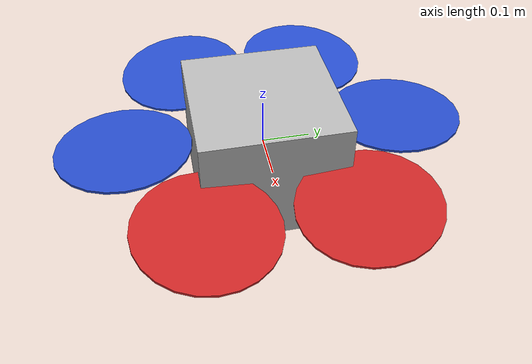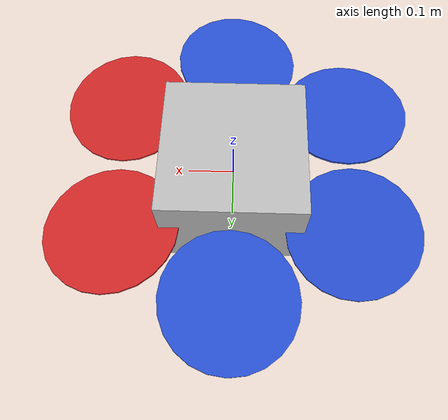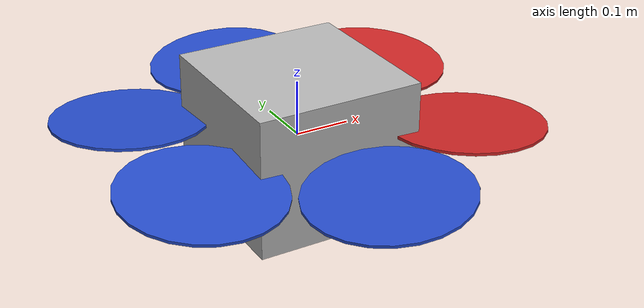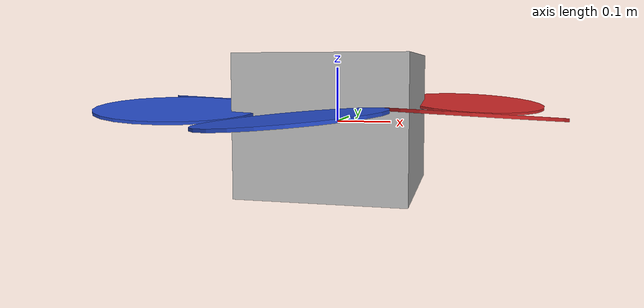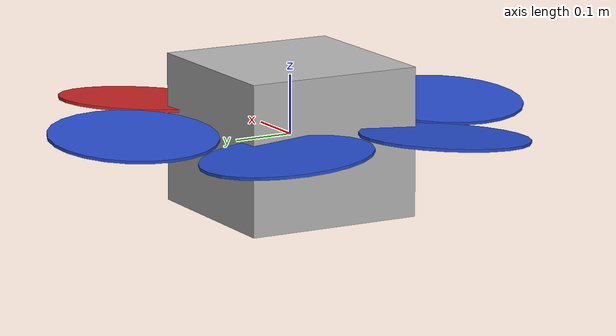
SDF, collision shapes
<?xml version="1.0"?>
<sdf version="1.6">
    <model name="X4_GPS_RGBD">
        <link name="base_link">
            <pose frame="">0 0 0 0 -0 0</pose>
            <inertial>
                <pose frame="">0 0 0 0 -0 0</pose>
                <mass>3.42</mass>
                <inertia>
                    <ixx>0.075</ixx>
                    <ixy>0</ixy>
                    <ixz>0</ixz>
                    <iyy>0.075</iyy>
                    <iyz>0</iyz>
                    <izz>0.148916</izz>
                </inertia>
            </inertial>
            <collision name="base_link_inertia_collision">
                <pose frame="">0 0 0 0 -0 0</pose>
                <geometry>
                    <box>
                        <size>0.3 0.3 0.25</size>
                    </box>
                </geometry>
            </collision>
            <visual name="base_link_inertia_visual">
                <pose frame="">0 0 0 0 -0 0</pose>
                <geometry>
                    <mesh>
                        <scale>1 1 1</scale>
                        <uri>file://REPLACE_RESOURCE_PATH/robots/X4_GPS_RGBD/meshes/x4.dae</uri>
                    </mesh>
                </geometry>
            </visual>
            <visual name="marker_visual_1">
                <pose frame="">-0.1 0 0.077 0 -0.1 0</pose>
                <geometry>
                    <mesh>
                        <scale>1 1 1</scale>
                        <uri>file://REPLACE_RESOURCE_PATH/robots/X4_GPS_RGBD/meshes/led.dae</uri>
                    </mesh>
                </geometry>
            </visual>
            <visual name="marker_visual_2">
                <pose frame="">-0.09 0.059 0.059 -0.785397 -0 0.2</pose>
                <geometry>
                    <mesh>
                        <scale>1 1 1</scale>
                        <uri>file://REPLACE_RESOURCE_PATH/robots/X4_GPS_RGBD/meshes/led.dae</uri>
                    </mesh>
                </geometry>
            </visual>
            <visual name="marker_visual_3">
                <pose frame="">-0.09 -0.059 0.059 0.785397 -0 -0.2</pose>
                <geometry>
                    <mesh>
                        <scale>1 1 1</scale>
                        <uri>file://REPLACE_RESOURCE_PATH/robots/X4_GPS_RGBD/meshes/led.dae</uri>
                    </mesh>
                </geometry>
            </visual>
            <visual name="downward_flashlight_visual">
                <pose frame="">-0.043704 0 0.102914 -0.2 0.000158 -1.57002</pose>
                <geometry>
                    <mesh>
                        <scale>0.01 0.01 0.01</scale>
                        <uri>file://REPLACE_RESOURCE_PATH/robots/X4_GPS_RGBD/meshes/spotlight.dae</uri>
                    </mesh>
                </geometry>
            </visual>
            <visual name="left_flashlight_visual">
                <pose frame="">-0.071985 0.090826 0.066102 0.06 -4.8e-05 -1.27</pose>
                <geometry>
                    <mesh>
                        <scale>0.01 0.01 0.01</scale>
                        <uri>file://REPLACE_RESOURCE_PATH/robots/X4_GPS_RGBD/meshes/spotlight.dae</uri>
                    </mesh>
                </geometry>
            </visual>
            <visual name="right_flashlight_visual">
                <pose frame="">-0.071985 -0.090826 0.066102 0.06 -4.8e-05 -1.87</pose>
                <geometry>
                    <mesh>
                        <scale>0.01 0.01 0.01</scale>
                        <uri>file://REPLACE_RESOURCE_PATH/robots/X4_GPS_RGBD/meshes/spotlight.dae</uri>
                    </mesh>
                </geometry>
            </visual>

            <sensor name="imu_sensor" type="imu">
                <always_on>1</always_on>
                <update_rate>250</update_rate>
                <imu>
                    <enable_orientation>0</enable_orientation>
                    <angular_velocity>
                        <x>
                            <noise type="gaussian">
                                <mean>0</mean>
                                <stddev>0.009</stddev>
                                <bias_mean>0.00075</bias_mean>
                                <bias_stddev>0.005</bias_stddev>
                                <dynamic_bias_stddev>0.00002</dynamic_bias_stddev>
                                <dynamic_bias_correlation_time>400.0</dynamic_bias_correlation_time>
                                <precision>0.00025</precision>
                            </noise>
                        </x>
                        <y>
                            <noise type="gaussian">
                                <mean>0</mean>
                                <stddev>0.009</stddev>
                                <bias_mean>0.00075</bias_mean>
                                <bias_stddev>0.005</bias_stddev>
                                <dynamic_bias_stddev>0.00002</dynamic_bias_stddev>
                                <dynamic_bias_correlation_time>400.0</dynamic_bias_correlation_time>
                                <precision>0.00025</precision>
                            </noise>
                        </y>
                        <z>
                            <noise type="gaussian">
                                <mean>0</mean>
                                <stddev>0.009</stddev>
                                <bias_mean>0.00075</bias_mean>
                                <bias_stddev>0.005</bias_stddev>
                                <dynamic_bias_stddev>0.00002</dynamic_bias_stddev>
                                <dynamic_bias_correlation_time>400.0</dynamic_bias_correlation_time>
                                <precision>0.00025</precision>
                            </noise>
                        </z>
                    </angular_velocity>
                    <linear_acceleration>
                        <x>
                            <noise type="gaussian">
                                <mean>0</mean>
                                <stddev>0.021</stddev>
                                <bias_mean>0.05</bias_mean>
                                <bias_stddev>0.0075</bias_stddev>
                                <dynamic_bias_stddev>0.000375</dynamic_bias_stddev>
                                <dynamic_bias_correlation_time>175.0</dynamic_bias_correlation_time>
                                <precision>0.005</precision>
                            </noise>
                        </x>
                        <y>
                            <noise type="gaussian">
                                <mean>0</mean>
                                <stddev>0.021</stddev>
                                <bias_mean>0.05</bias_mean>
                                <bias_stddev>0.0075</bias_stddev>
                                <dynamic_bias_stddev>0.000375</dynamic_bias_stddev>
                                <dynamic_bias_correlation_time>175.0</dynamic_bias_correlation_time>
                                <precision>0.005</precision>
                            </noise>
                        </y>
                        <z>
                            <noise type="gaussian">
                                <mean>0</mean>
                                <stddev>0.021</stddev>
                                <bias_mean>0.05</bias_mean>
                                <bias_stddev>0.0075</bias_stddev>
                                <dynamic_bias_stddev>0.000375</dynamic_bias_stddev>
                                <dynamic_bias_correlation_time>175.0</dynamic_bias_correlation_time>
                                <precision>0.005</precision>
                            </noise>
                        </z>
                    </linear_acceleration>
                </imu>

            </sensor>

            <sensor name="gps" type="navsat">
                <always_on>1</always_on>
                <update_rate>1</update_rate>
            </sensor>
            <sensor name="magnetometer" type="magnetometer">
                <always_on>1</always_on>
                <update_rate>20</update_rate>
                <magnetometer>
                    <x>
                        <noise type="gaussian">
                            <mean>0.000000080</mean>
                            <bias_mean>0.000000400</bias_mean>
                        </noise>
                    </x>
                    <y>
                        <noise type="gaussian">
                            <mean>0.000000080</mean>
                            <bias_mean>0.000000400</bias_mean>
                        </noise>
                    </y>
                    <z>
                        <noise type="gaussian">
                            <mean>0.000000080</mean>
                            <bias_mean>0.000000400</bias_mean>
                        </noise>
                    </z>
                </magnetometer>
            </sensor>
            <visual name="camera_mount_base_visual">
                <pose>0.05 0 -0.030 0 0.0 0</pose>
                <geometry>
                    <box>
                        <size>0.06 0.06 0.006</size>
                    </box>
                </geometry>
            </visual>
            <visual name="camera_mount_arm_visual">
                <pose>0.08 0 -0.040 0 0.0 0</pose>
                <geometry>
                    <cylinder>
                        <radius>0.005</radius>
                        <length>0.08</length>
                    </cylinder>
                </geometry>
            </visual>
            <visual name="camera_mount_arm2_visual">
                <pose>0.08 0 -0.08 0 1.57 0</pose>
                <geometry>
                    <cylinder>
                        <radius>0.01</radius>
                        <length>0.025</length>
                    </cylinder>
                </geometry>
            </visual>
            <visual name="camera_visual">
                <pose>0.1 0 -0.08 0 0 0</pose>
                <geometry>
                    <box>
                        <size>0.02 0.025 0.025</size>
                    </box>
                </geometry>
            </visual>
            <sensor name="camera_front" type="rgbd_camera">
                <pose>0.2 0 -0.08 0 0 0</pose>
                <always_on>1</always_on>
                <update_rate>20</update_rate>
                <camera name="camera_front">
                    <horizontal_fov>1.0472
                    </horizontal_fov>
                    <lens>
                        <intrinsics>
                            <!-- fx = fy = width / ( 2 * tan (hfov / 2 ) ) -->
                            <fx>277.1</fx>
                            <fy>277.1</fy>
                            <!-- cx = ( width + 1 ) / 2 -->
                            <cx>160.5</cx>
                            <!-- cy = ( height + 1 ) / 2 -->
                            <cy>120.5</cy>
                            <s>0</s>
                        </intrinsics>
                    </lens>
                    <distortion>
                        <k1>0.0</k1>
                        <k2>0.0</k2>
                        <k3>0.0</k3>
                        <p1>0.0</p1>
                        <p2>0.0</p2>
                        <center>0.5 0.5</center>
                    </distortion>
                    <image>
                        <width>320</width>
                        <height>240</height>
                        <format>R8G8B8</format>
                    </image>
                    <clip>
                        <near>0.01</near>
                        <far>300</far>
                    </clip>
                    <depth_camera>
                        <clip>
                            <near>0.1</near>
                            <far>10</far>
                        </clip>
                    </depth_camera>
                    <noise>
                        <type>gaussian</type>
                        <mean>0</mean>
                        <stddev>0.007</stddev>
                    </noise>
                </camera>
            </sensor>
        </link>
        <link name="rotor_0">
            <pose frame="">0.247 0.1506 0.028 0.087267 0 0.523599</pose>
            <inertial>
                <pose frame="">0 0 0 0 -0 0</pose>
                <mass>0.005</mass>
                <inertia>
                    <ixx>9.75e-07</ixx>
                    <ixy>0</ixy>
                    <ixz>0</ixz>
                    <iyy>8.13545e-05</iyy>
                    <iyz>0</iyz>
                    <izz>8.22545e-05</izz>
                </inertia>
            </inertial>
            <collision name="rotor_0_collision">
                <pose frame="">0 0 0 0 -0 0</pose>
                <geometry>
                    <cylinder>
                        <length>0.005</length>
                        <radius>0.1397</radius>
                    </cylinder>
                </geometry>
                <surface>
                    <contact>
                        <ode/>
                    </contact>
                    <friction>
                        <ode/>
                    </friction>
                </surface>
            </collision>
            <visual name="rotor_0_visual">
                <pose frame="">0 0 0 0 -0 0</pose>
                <geometry>
                    <mesh>
                        <scale>1 1 1</scale>
                        <uri>file://REPLACE_RESOURCE_PATH/robots/X4_GPS_RGBD/meshes/neo11_propeller_ccw.dae</uri>
                    </mesh>
                </geometry>
                <material>
                    <diffuse>1 0 0 1</diffuse>
                    <script>
                        <name>Gazebo/Red</name>
                        <uri>file:///media/materials/scripts/gazebo.material</uri>
                    </script>
                </material>
                <cast_shadows>0</cast_shadows>
            </visual>
            <gravity>1</gravity>
            <velocity_decay/>
        </link>
        <joint name="rotor_0_joint" type="revolute">
            <child>rotor_0</child>
            <parent>base_link</parent>
            <axis>
                <xyz>0.043578 -0.075479 0.996195</xyz>
                <limit>
                    <lower>-1e+16</lower>
                    <upper>1e+16</upper>
                </limit>
                <dynamics>
                    <spring_reference>0</spring_reference>
                    <spring_stiffness>0</spring_stiffness>
                </dynamics>
                <use_parent_model_frame>1</use_parent_model_frame>
            </axis>
        </joint>
        <link name="rotor_1">
            <pose frame="">-0.00067 0.28929 0.028 0 -0.087267 0</pose>
            <inertial>
                <pose frame="">0 0 0 0 -0 0</pose>
                <mass>0.005</mass>
                <inertia>
                    <ixx>9.75e-07</ixx>
                    <ixy>0</ixy>
                    <ixz>0</ixz>
                    <iyy>8.13545e-05</iyy>
                    <iyz>0</iyz>
                    <izz>8.22545e-05</izz>
                </inertia>
            </inertial>
            <collision name="rotor_1_collision">
                <pose frame="">0 0 0 0 -0 0</pose>
                <geometry>
                    <cylinder>
                        <length>0.005</length>
                        <radius>0.1397</radius>
                    </cylinder>
                </geometry>
                <surface>
                    <contact>
                        <ode/>
                    </contact>
                    <friction>
                        <ode/>
                    </friction>
                </surface>
            </collision>
            <visual name="rotor_1_visual">
                <pose frame="">0 0 0 0 -0 0</pose>
                <geometry>
                    <mesh>
                        <scale>1 1 1</scale>
                        <uri>file://REPLACE_RESOURCE_PATH/robots/X4_GPS_RGBD/meshes/neo11_propeller_cw.dae</uri>
                    </mesh>
                </geometry>
                <material>
                    <diffuse>0 0 1 1</diffuse>
                    <script>
                        <name>Gazebo/Blue</name>
                        <uri>file://media/materials/scripts/gazebo.material</uri>
                    </script>
                </material>
                <cast_shadows>0</cast_shadows>
            </visual>
            <gravity>1</gravity>
            <velocity_decay/>
        </link>
        <joint name="rotor_1_joint" type="revolute">
            <child>rotor_1</child>
            <parent>base_link</parent>
            <axis>
                <xyz>-0.087156 0 0.996195</xyz>
                <limit>
                    <lower>-1e+16</lower>
                    <upper>1e+16</upper>
                </limit>
                <dynamics>
                    <spring_reference>0</spring_reference>
                    <spring_stiffness>0</spring_stiffness>
                </dynamics>
                <use_parent_model_frame>1</use_parent_model_frame>
            </axis>
        </joint>
        <link name="rotor_2">
            <pose frame="">-0.2501 0.1454 0.028 0.087267 -0 2.61799</pose>
            <inertial>
                <pose frame="">0 0 0 0 -0 0</pose>
                <mass>0.005</mass>
                <inertia>
                    <ixx>9.75e-07</ixx>
                    <ixy>0</ixy>
                    <ixz>0</ixz>
                    <iyy>8.13545e-05</iyy>
                    <iyz>0</iyz>
                    <izz>8.22545e-05</izz>
                </inertia>
            </inertial>
            <collision name="rotor_2_collision">
                <pose frame="">0 0 0 0 -0 0</pose>
                <geometry>
                    <cylinder>
                        <length>0.005</length>
                        <radius>0.1397</radius>
                    </cylinder>
                </geometry>
                <surface>
                    <contact>
                        <ode/>
                    </contact>
                    <friction>
                        <ode/>
                    </friction>
                </surface>
            </collision>
            <visual name="rotor_2_visual">
                <pose frame="">0 0 0 0 -0 0</pose>
                <geometry>
                    <mesh>
                        <scale>1 1 1</scale>
                        <uri>file://REPLACE_RESOURCE_PATH/robots/X4_GPS_RGBD/meshes/neo11_propeller_ccw.dae</uri>
                    </mesh>
                </geometry>
                <material>
                    <diffuse>0 0 1 1</diffuse>
                    <script>
                        <name>Gazebo/Blue</name>
                        <uri>file://media/materials/scripts/gazebo.material</uri>
                    </script>
                </material>
                <cast_shadows>0</cast_shadows>
            </visual>
            <gravity>1
            </gravity>
            <velocity_decay/>
        </link>
        <joint name="rotor_2_joint" type="revolute">
            <child>rotor_2</child>
            <parent>base_link</parent>
            <axis>
                <xyz>0.043578 0.075479 0.996195</xyz>
                <limit>
                    <lower>-1e+16</lower>
                    <upper>1e+16</upper>
                </limit>
                <dynamics>
                    <spring_reference>0</spring_reference>
                    <spring_stiffness>0</spring_stiffness>
                </dynamics>
                <use_parent_model_frame>1</use_parent_model_frame>
            </axis>
        </joint>
        <link name="rotor_3">
            <pose frame="">-0.2501 -0.1454 0.028 -0.087267 -0 -2.61799</pose>
            <inertial>
                <pose frame="">0 0 0 0 -0 0</pose>
                <mass>0.005</mass>
                <inertia>
                    <ixx>9.75e-07</ixx>
                    <ixy>0</ixy>
                    <ixz>0</ixz>
                    <iyy>8.13545e-05</iyy>
                    <iyz>0</iyz>
                    <izz>8.22545e-05</izz>
                </inertia>
            </inertial>
            <collision name="rotor_3_collision">
                <pose frame="">0 0 0 0 -0 0</pose>
                <geometry>
                    <cylinder>
                        <length>0.005</length>
                        <radius>0.1397</radius>
                    </cylinder>
                </geometry>
                <surface>
                    <contact>
                        <ode/>
                    </contact>
                    <friction>
                        <ode/>
                    </friction>
                </surface>
            </collision>
            <visual name="rotor_3_visual">
                <pose frame="">0 0 0 0 -0 0</pose>
                <geometry>
                    <mesh>
                        <scale>1 1 1</scale>
                        <uri>file://REPLACE_RESOURCE_PATH/robots/X4_GPS_RGBD/meshes/neo11_propeller_cw.dae</uri>
                    </mesh>
                </geometry>
                <material>
                    <diffuse>0 0 1 1</diffuse>
                    <script>
                        <name>Gazebo/Blue</name>
                        <uri>file://media/materials/scripts/gazebo.material</uri>
                    </script>
                </material>
                <cast_shadows>0</cast_shadows>
            </visual>
            <gravity>1
            </gravity>
            <velocity_decay/>
        </link>
        <joint name="rotor_3_joint" type="revolute">
            <child>rotor_3</child>
            <parent>base_link</parent>
            <axis>
                <xyz>0.043578 -0.075479 0.996195</xyz>
                <limit>
                    <lower>-1e+16</lower>
                    <upper>1e+16</upper>
                </limit>
                <dynamics>
                    <spring_reference>0</spring_reference>
                    <spring_stiffness>0</spring_stiffness>
                </dynamics>
                <use_parent_model_frame>1</use_parent_model_frame>
            </axis>
        </joint>
        <link name="rotor_4">
            <pose frame="">-0.00067 -0.28929 0.028 -0 0.087267 -3.14159</pose>
            <inertial>
                <pose frame="">0 0 0 0 -0 0</pose>
                <mass>0.005</mass>
                <inertia>
                    <ixx>9.75e-07</ixx>
                    <ixy>0</ixy>
                    <ixz>0</ixz>
                    <iyy>8.13545e-05</iyy>
                    <iyz>0</iyz>
                    <izz>8.22545e-05</izz>
                </inertia>
            </inertial>
            <collision name="rotor_4_collision">
                <pose frame="">0 0 0 0 -0 0</pose>
                <geometry>
                    <cylinder>
                        <length>0.005</length>
                        <radius>0.1397</radius>
                    </cylinder>
                </geometry>
                <surface>
                    <contact>
                        <ode/>
                    </contact>
                    <friction>
                        <ode/>
                    </friction>
                </surface>
            </collision>
            <visual name="rotor_4_visual">
                <pose frame="">0 0 0 0 -0 0</pose>
                <geometry>
                    <mesh>
                        <scale>1 1 1</scale>
                        <uri>file://REPLACE_RESOURCE_PATH/robots/X4_GPS_RGBD/meshes/neo11_propeller_ccw.dae</uri>
                    </mesh>
                </geometry>
                <material>
                    <diffuse>0 0 1 1</diffuse>
                    <script>
                        <name>Gazebo/Blue</name>
                        <uri>file://media/materials/scripts/gazebo.material</uri>
                    </script>
                </material>
                <cast_shadows>0</cast_shadows>
            </visual>
            <gravity>1
            </gravity>
            <velocity_decay/>
        </link>
        <joint name="rotor_4_joint" type="revolute">
            <child>rotor_4</child>
            <parent>base_link</parent>
            <axis>
                <xyz>-0.087156 -0 0.996195</xyz>
                <limit>
                    <lower>-1e+16</lower>
                    <upper>1e+16</upper>
                </limit>
                <dynamics>
                    <spring_reference>0</spring_reference>
                    <spring_stiffness>0</spring_stiffness>
                </dynamics>
                <use_parent_model_frame>1</use_parent_model_frame>
            </axis>
        </joint>
        <link name="rotor_5">
            <pose frame="">0.247 -0.1506 0.028 -0.087267 0 -0.523599</pose>
            <inertial>
                <pose frame="">0 0 0 0 -0 0</pose>
                <mass>0.005</mass>
                <inertia>
                    <ixx>9.75e-07</ixx>
                    <ixy>0</ixy>
                    <ixz>0</ixz>
                    <iyy>8.13545e-05</iyy>
                    <iyz>0</iyz>
                    <izz>8.22545e-05</izz>
                </inertia>
            </inertial>
            <collision name="rotor_5_collision">
                <pose frame="">0 0 0 0 -0 0</pose>
                <geometry>
                    <cylinder>
                        <length>0.005</length>
                        <radius>0.1397</radius>
                    </cylinder>
                </geometry>
                <surface>
                    <contact>
                        <ode/>
                    </contact>
                    <friction>
                        <ode/>
                    </friction>
                </surface>
            </collision>
            <visual name="rotor_5_visual">
                <pose frame="">0 0 0 0 -0 0
                </pose>
                <geometry>
                    <mesh>
                        <scale>1 1 1</scale>
                        <uri>file://REPLACE_RESOURCE_PATH/robots/X4_GPS_RGBD/meshes/neo11_propeller_cw.dae</uri>
                    </mesh>
                </geometry>
                <material>
                    <diffuse>1 0 0 1</diffuse>
                    <script>
                        <name>Gazebo/Red</name>
                        <uri>file://media/materials/scripts/gazebo.material</uri>
                    </script>
                </material>
                <cast_shadows>0</cast_shadows>
            </visual>
            <gravity>1</gravity>
            <velocity_decay/>
        </link>
        <joint name="rotor_5_joint" type="revolute">
            <child>rotor_5</child>
            <parent>base_link</parent>
            <axis>
                <xyz>0.043578 0.075479 0.996195</xyz>
                <limit>
                    <lower>-1e+16</lower>
                    <upper>1e+16</upper>
                </limit>
                <dynamics>
                    <spring_reference>0</spring_reference>
                    <spring_stiffness>0</spring_stiffness>
                </dynamics>
                <use_parent_model_frame>1</use_parent_model_frame>
            </axis>
        </joint>

        <link name="base_link/camera_front">
            <pose frame="">0.2 0 -0.05 0 0 0</pose>
            <inertial>
                <pose frame="">0 0 0 0 0 0</pose>
                <mass>0.005</mass>
                <inertia>
                    <ixx>9.75e-07</ixx>
                    <ixy>0</ixy>
                    <ixz>0</ixz>
                    <iyy>8.13545e-05</iyy>
                    <iyz>0</iyz>
                    <izz>8.22545e-05</izz>
                </inertia>
            </inertial>
        </link>

        <joint name="camera_front_JOINT" type="fixed">
            <child>base_link/camera_front</child>
            <parent>base_link</parent>
        </joint>

        <!-- now some plugins -->
        <plugin filename="ignition-gazebo-multicopter-motor-model-system" name="ignition::gazebo::systems::MulticopterMotorModel">
            <robotNamespace>model/REPLACE_THIS_NAMESPACE</robotNamespace>
            <jointName>rotor_0_joint</jointName>
            <linkName>rotor_0</linkName>
            <turningDirection>ccw</turningDirection>
            <timeConstantUp>0.0182</timeConstantUp>
            <timeConstantDown>0.0182</timeConstantDown>
            <maxRotVelocity>1000.0</maxRotVelocity>
            <motorConstant>1.269e-05</motorConstant>
            <momentConstant>0.016754</momentConstant>
            <commandSubTopic>command/motor_speed</commandSubTopic>
            <motorNumber>0</motorNumber>
            <rotorDragCoefficient>2.0673e-04</rotorDragCoefficient>
            <rotorDragCoefficient>0</rotorDragCoefficient>
            <rollingMomentCoefficient>0</rollingMomentCoefficient>
            <motorSpeedPubTopic>motor_speed/0</motorSpeedPubTopic>
            <rotorVelocitySlowdownSim>2</rotorVelocitySlowdownSim>
            <motorType>velocity</motorType>
        </plugin>

        <plugin filename="ignition-gazebo-multicopter-motor-model-system"  name="ignition::gazebo::systems::MulticopterMotorModel">
            <robotNamespace>model/REPLACE_THIS_NAMESPACE</robotNamespace>
            <jointName>rotor_1_joint</jointName>
            <linkName>rotor_1</linkName>
            <turningDirection>cw</turningDirection>
            <timeConstantUp>0.0182</timeConstantUp>
            <timeConstantDown>0.0182</timeConstantDown>
            <maxRotVelocity>1000.0</maxRotVelocity>
            <motorConstant>1.269e-05</motorConstant>
            <momentConstant>0.016754</momentConstant>
            <commandSubTopic>command/motor_speed</commandSubTopic>
            <motorNumber>1</motorNumber>
            <rotorDragCoefficient>2.0673e-04</rotorDragCoefficient>
            <rotorDragCoefficient>0</rotorDragCoefficient>
            <rollingMomentCoefficient>0</rollingMomentCoefficient>
            <motorSpeedPubTopic>motor_speed/1</motorSpeedPubTopic>
            <rotorVelocitySlowdownSim>2</rotorVelocitySlowdownSim>
            <motorType>velocity</motorType>
        </plugin>

        <plugin filename="ignition-gazebo-multicopter-motor-model-system" name="ignition::gazebo::systems::MulticopterMotorModel">
            <robotNamespace>model/REPLACE_THIS_NAMESPACE</robotNamespace>
            <jointName>rotor_2_joint</jointName>
            <linkName>rotor_2</linkName>
            <turningDirection>ccw</turningDirection>
            <timeConstantUp>0.0182</timeConstantUp>
            <timeConstantDown>0.0182</timeConstantDown>
            <maxRotVelocity>1000.0</maxRotVelocity>
            <motorConstant>1.269e-05</motorConstant>
            <momentConstant>0.016754</momentConstant>
            <commandSubTopic>command/motor_speed</commandSubTopic>
            <motorNumber>2</motorNumber>
            <rotorDragCoefficient>2.0673e-04</rotorDragCoefficient>
            <rotorDragCoefficient>0</rotorDragCoefficient>
            <rollingMomentCoefficient>0</rollingMomentCoefficient>
            <motorSpeedPubTopic>motor_speed/2</motorSpeedPubTopic>
            <rotorVelocitySlowdownSim>2</rotorVelocitySlowdownSim>
            <motorType>velocity</motorType>
        </plugin>

        <plugin filename="ignition-gazebo-multicopter-motor-model-system" name="ignition::gazebo::systems::MulticopterMotorModel">
            <robotNamespace>model/REPLACE_THIS_NAMESPACE</robotNamespace>
            <jointName>rotor_3_joint</jointName>
            <linkName>rotor_3</linkName>
            <turningDirection>cw</turningDirection>
            <timeConstantUp>0.0182</timeConstantUp>
            <timeConstantDown>0.0182</timeConstantDown>
            <maxRotVelocity>1000.0</maxRotVelocity>
            <motorConstant>1.269e-05</motorConstant>
            <momentConstant>0.016754</momentConstant>
            <commandSubTopic>command/motor_speed</commandSubTopic>
            <motorNumber>3</motorNumber>
            <rotorDragCoefficient>2.0673e-04</rotorDragCoefficient>
            <rotorDragCoefficient>0</rotorDragCoefficient>
            <rollingMomentCoefficient>0</rollingMomentCoefficient>
            <motorSpeedPubTopic>motor_speed/3</motorSpeedPubTopic>
            <rotorVelocitySlowdownSim>2</rotorVelocitySlowdownSim>
            <motorType>velocity</motorType>
        </plugin>

        <plugin filename="ignition-gazebo-multicopter-motor-model-system" name="ignition::gazebo::systems::MulticopterMotorModel">
            <robotNamespace>model/REPLACE_THIS_NAMESPACE</robotNamespace>
            <jointName>rotor_4_joint</jointName>
            <linkName>rotor_4</linkName>
            <turningDirection>ccw</turningDirection>
            <timeConstantUp>0.0182</timeConstantUp>
            <timeConstantDown>0.0182</timeConstantDown>
            <maxRotVelocity>1000.0</maxRotVelocity>
            <motorConstant>1.269e-05</motorConstant>
            <momentConstant>0.016754</momentConstant>
            <commandSubTopic>command/motor_speed</commandSubTopic>
            <motorNumber>4</motorNumber>
            <rotorDragCoefficient>2.0673e-04</rotorDragCoefficient>
            <rotorDragCoefficient>0</rotorDragCoefficient>
            <rollingMomentCoefficient>0</rollingMomentCoefficient>
            <motorSpeedPubTopic>motor_speed/4</motorSpeedPubTopic>
            <rotorVelocitySlowdownSim>2</rotorVelocitySlowdownSim>
            <motorType>velocity</motorType>
        </plugin>

        <plugin filename="ignition-gazebo-multicopter-motor-model-system" name="ignition::gazebo::systems::MulticopterMotorModel">
            <robotNamespace>model/REPLACE_THIS_NAMESPACE</robotNamespace>
            <jointName>rotor_5_joint</jointName>
            <linkName>rotor_5</linkName>
            <turningDirection>cw</turningDirection>
            <timeConstantUp>0.0182</timeConstantUp>
            <timeConstantDown>0.0182</timeConstantDown>
            <maxRotVelocity>1000.0</maxRotVelocity>
            <motorConstant>1.269e-05</motorConstant>
            <momentConstant>0.016754</momentConstant>
            <commandSubTopic>command/motor_speed</commandSubTopic>
            <motorNumber>5</motorNumber>
            <rotorDragCoefficient>2.0673e-04</rotorDragCoefficient>
            <rotorDragCoefficient>0</rotorDragCoefficient>
            <rollingMomentCoefficient>0</rollingMomentCoefficient>
            <motorSpeedPubTopic>motor_speed/5</motorSpeedPubTopic>
            <rotorVelocitySlowdownSim>2</rotorVelocitySlowdownSim>
            <motorType>velocity</motorType>
        </plugin>

        <plugin filename="ignition-gazebo-multicopter-control-system"   name="ignition::gazebo::systems::MulticopterVelocityControl">
            <robotNamespace>model/REPLACE_THIS_NAMESPACE</robotNamespace>
            <commandSubTopic>cmd_vel</commandSubTopic>
            <enableSubTopic>enable</enableSubTopic>
            <comLinkName>base_link</comLinkName>
            <velocityGain>6 6 10</velocityGain>
            <attitudeGain>4 4 2</attitudeGain>
            <angularRateGain>0.7 0.7 0.7</angularRateGain>
            <maximumLinearAcceleration>1 1 2</maximumLinearAcceleration>
            <maximumLinearVelocity>5 5 5</maximumLinearVelocity>
            <maximumAngularVelocity>3 3 3</maximumAngularVelocity>
            <linearVelocityNoiseMean>0 0 0</linearVelocityNoiseMean>
            <!-- linearVelocityNoiseStdDev based on error values reported in the paper Shen et. al., -->
            <!-- Vision-Based State Estimation and Trajectory Control Towards High-Speed Flight with a Quadrotor -->
            <!-- http://citeseerx.ist.psu.edu/viewdoc/download?doi=10.1.1.490.7958&rep=rep1&type=pdf -->
            <linearVelocityNoiseStdDev>0.1105 0.1261 0.0947</linearVelocityNoiseStdDev>
            <angularVelocityNoiseMean>0 0 0</angularVelocityNoiseMean>
            <!-- angularVelocityNoiseStdDev values based on ADIS16448's Rate Noise Density with a sample  -->
            <!-- time of 0.004 ms. -->
            <angularVelocityNoiseStdDev>0.004 0.004 0.004</angularVelocityNoiseStdDev>

            <rotorConfiguration>
                <rotor>
                    <jointName>rotor_0_joint</jointName>
                    <forceConstant>1.269e-05</forceConstant>
                    <momentConstant>1.6754e-2</momentConstant>
                    <direction>1</direction>
                </rotor>
                <rotor>
                    <jointName>rotor_1_joint</jointName>
                    <forceConstant>1.269e-05</forceConstant>
                    <momentConstant>1.6754e-2</momentConstant>
                    <direction>-1</direction>
                </rotor>
                <rotor>
                    <jointName>rotor_2_joint</jointName>
                    <forceConstant>1.269e-05</forceConstant>
                    <momentConstant>1.6754e-2</momentConstant>
                    <direction>1</direction>
                </rotor>
                <rotor>
                    <jointName>rotor_3_joint</jointName>
                    <forceConstant>1.269e-05</forceConstant>
                    <momentConstant>1.6754e-2</momentConstant>
                    <direction>-1</direction>
                </rotor>
                <rotor>
                    <jointName>rotor_4_joint</jointName>
                    <forceConstant>1.269e-05</forceConstant>
                    <momentConstant>1.6754e-2</momentConstant>
                    <direction>1</direction>
                </rotor>
                <rotor>
                    <jointName>rotor_5_joint</jointName>
                    <forceConstant>1.269e-05</forceConstant>
                    <momentConstant>1.6754e-2</momentConstant>
                    <direction>-1</direction>
                </rotor>
            </rotorConfiguration>
        </plugin>

        <plugin filename="ignition-gazebo-odometry-publisher-system"  name="ignition::gazebo::systems::OdometryPublisher">
            <dimensions>3</dimensions>
            <odom_frame>odom</odom_frame>
            <robot_base_frame>base_footprint</robot_base_frame>
        </plugin>

        <plugin filename="ignition-gazebo-navsat-system"  name="ignition::gazebo::systems::NavSat"></plugin>

        <plugin name="ignition::gazebo::systems::PosePublisher" filename="ignition-gazebo-pose-publisher-system">
            <publish_link_pose>false</publish_link_pose>
            <publish_collision_pose>false</publish_collision_pose>
            <publish_visual_pose>false</publish_visual_pose>
            <publish_nested_model_pose>true</publish_nested_model_pose>
            <update_frequency>20</update_frequency>
        </plugin>

        <plugin name="gz::sim::systems::JointStatePublisher" filename="gz-sim-joint-state-publisher-system">
            <joint_name>rotor_0_joint</joint_name>
            <joint_name>rotor_1_joint</joint_name>
            <joint_name>rotor_2_joint</joint_name>
            <joint_name>rotor_3_joint</joint_name>
            <joint_name>rotor_4_joint</joint_name>
            <joint_name>rotor_5_joint</joint_name>
            <update_rate>50</update_rate>
        </plugin>
    </model>
</sdf>
